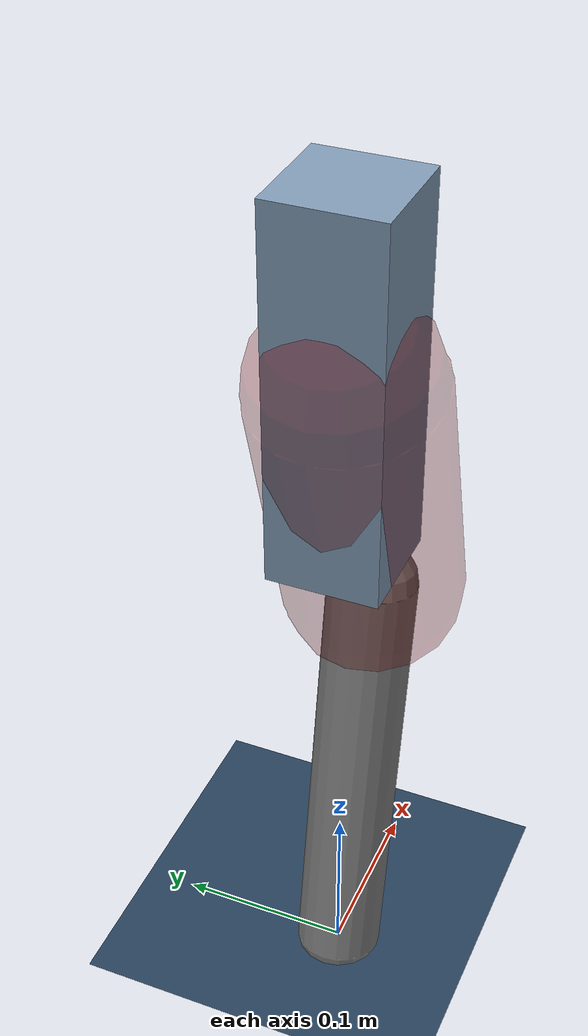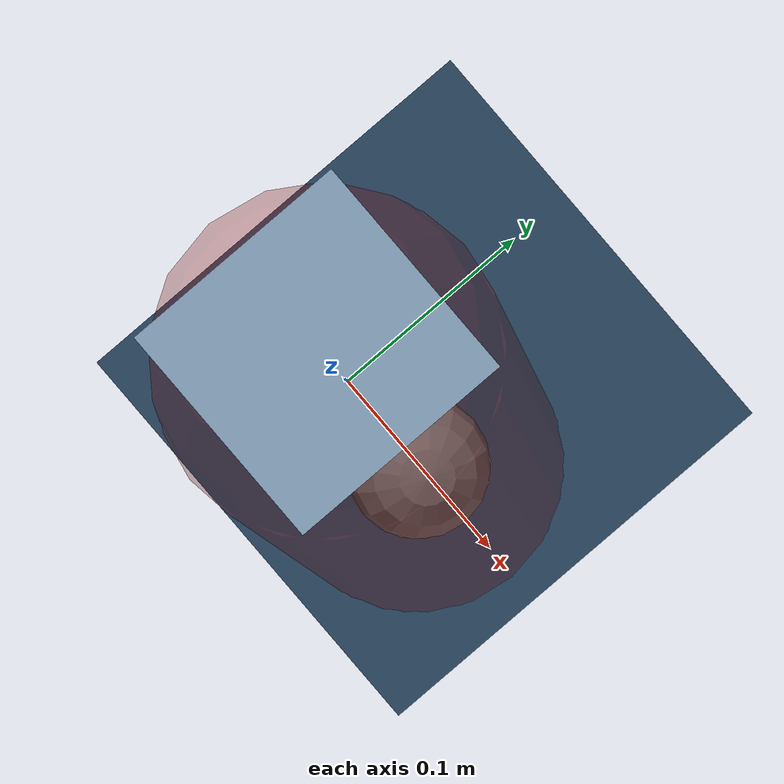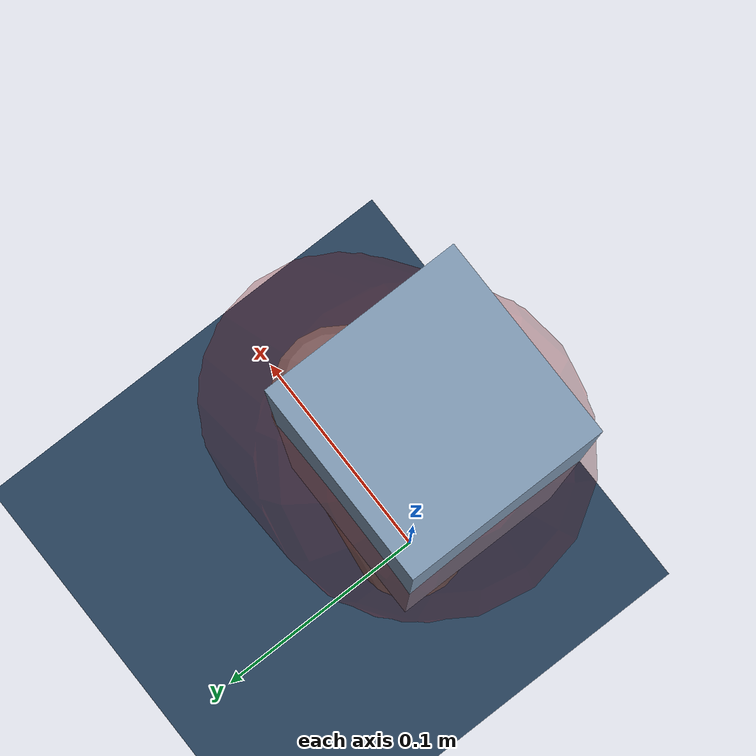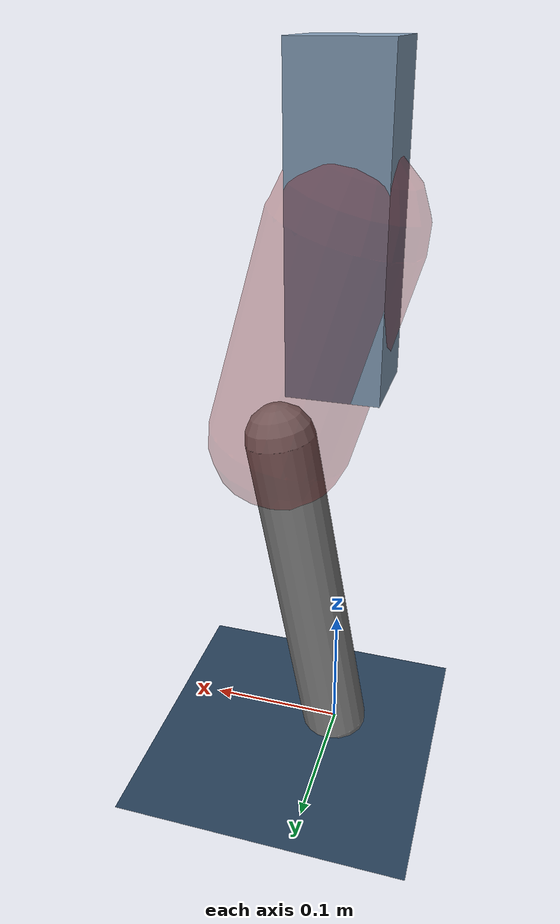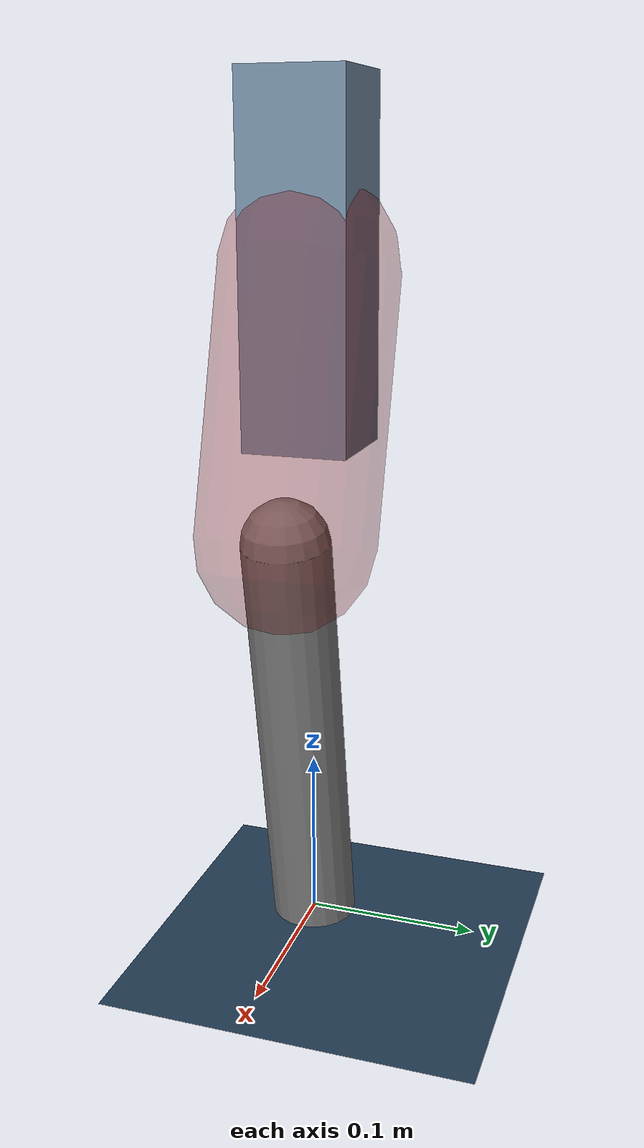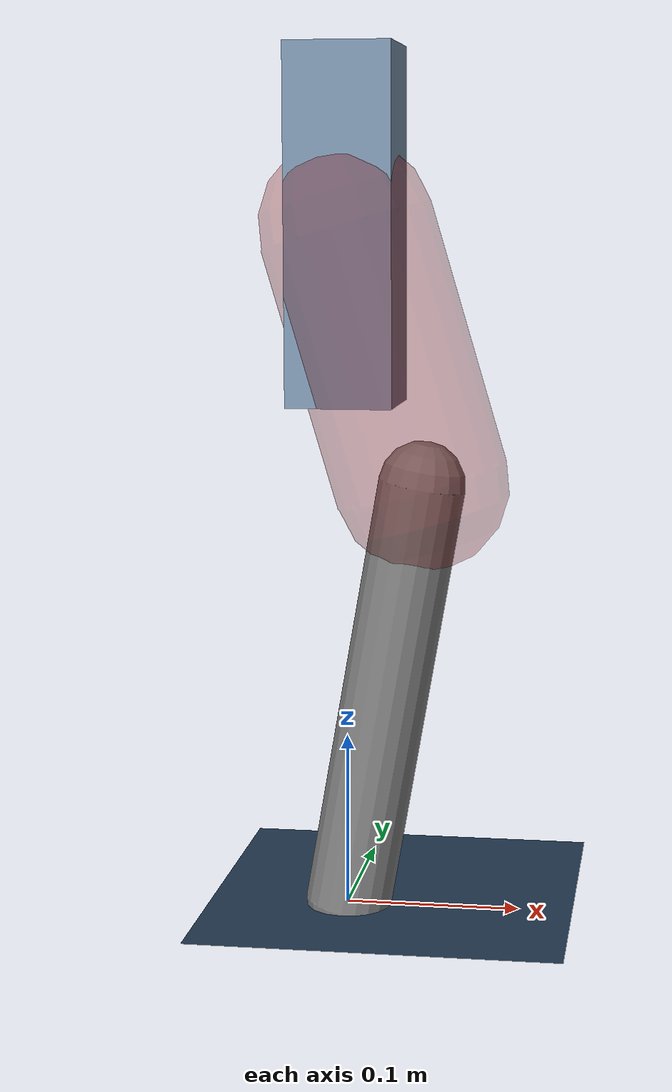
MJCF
<mujoco model="Hopper2D">
	<compiler inertiafromgeom="true" angle="radian" />
	<option timestep="0.001" integrator="implicit" cone="elliptic" solver="Newton" tolerance="1e-10" />

	<default>
		<geom contype="1" conaffinity="1" condim="3" friction="2 0.005 0.0001" solref="0.005 1" />
		<joint limited="true" damping="0.1" />
	</default>

	<asset>
		<texture name="skybox" type="skybox" builtin="gradient" rgb1=".4 .6 .8" rgb2="0 0 0" width="800" height="800" />
		<texture name="grid" type="2d" builtin="checker" rgb1=".1 .2 .3" rgb2=".2 .3 .4" width="300" height="300" mark="edge" markrgb=".2 .3 .4" />
		<material name="ground" texture="grid" texrepeat="1 1" texuniform="true" reflectance="0.1" />
		<material name="leg" rgba="0.5 0.6 0.7 1" />
	</asset>

	<worldbody>

		<geom name="floor" type="plane" size="5 5 0.25" material="ground" />

		<light directional="false" diffuse="0.8 0.8 0.8" specular="0.3 0.3 0.3" pos="0 0 2" dir="0 0 -1" />
		<light mode="targetbodycom" target="base" directional="false" diffuse="0.8 0.8 0.8" specular="0.3 0.3 0.3" pos="0 0 2" dir="0 0 -1" />

		<camera name="fixed" pos="0 -2 1" xyaxes="1 0 0 0 0 1" />
		<camera name="tracking" mode="trackcom" pos="0 -3 1" />

		<body name="root" pos="0 0 0.39313857217710824">
			<joint name="slide_x" type="slide" axis="1 0 0" range="-100 100" />
			<joint name="slide_z" type="slide" axis="0 0 1" range="0 10" />

			<body name="base" pos="0 0 0">
				<geom name="torso" type="box" size="0.03 0.03 0.1" mass="1.863" material="leg" />

				<body name="link1" pos="0 0 0" euler="0 1.2819343641660481 0">
					<joint type="hinge" axis="0 -1 0" pos="0 0 0" name="hinge1" limited="true" range="-3.14 3.14" stiffness="0" damping="0.1" />
					<geom name="thigh" type="capsule" fromto="0 0 0 0.15145114939507584 0 0" size="0.05" rgba="0.5 0 0 0.3" mass="0.6119376436086744" />

					<body name="link2" pos="0.15145114939507584 0 0" euler="0 0.46112611995044633 0">
						<joint type="hinge" axis="0 -1 0" pos="0 0 0" name="hinge2" limited="true" range="-3.14 3.14" stiffness="0" damping="0.1" />
						<geom name="shank" type="capsule" fromto="0 0 0 0.2516874227820324 0 0" size="0.025" mass="0.44391868050382916" />

					</body>
				</body>
			</body>
		</body>
	</worldbody>

	<actuator>
		<motor name="torque1" joint="hinge1" ctrlrange="-43.16367166256934 43.16367166256934" ctrllimited="true" gear="1" />
		<motor name="torque2" joint="hinge2" ctrlrange="-14.199587543756966 14.199587543756966" ctrllimited="true" gear="1" />
	</actuator>
</mujoco>
